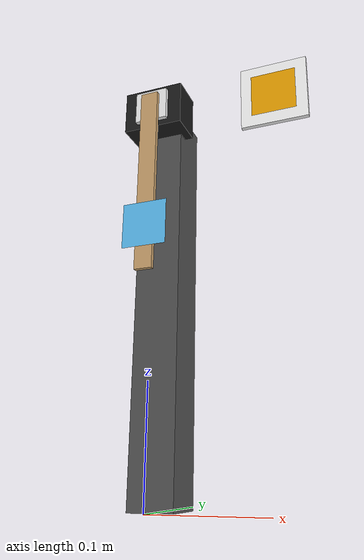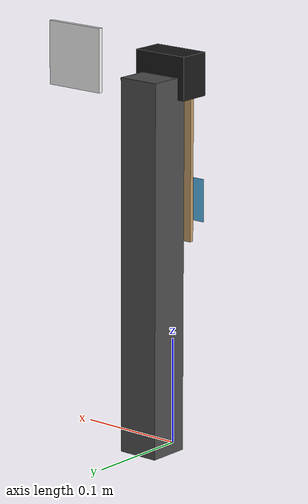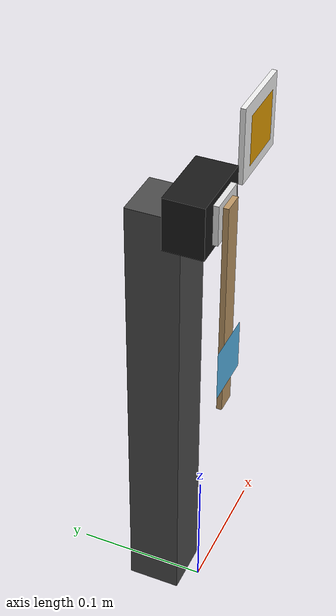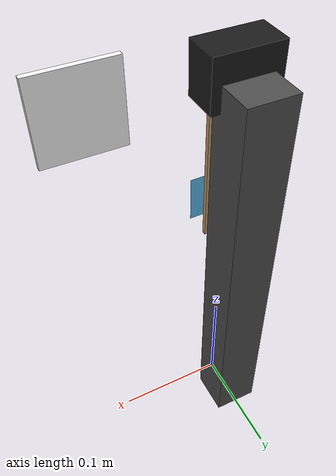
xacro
<?xml version="1.0"?>
<robot name="servo_arm" xmlns:xacro="http://www.ros.org/wiki/xacro">
  <xacro:arg name="mass" default="0.1223"/> <!-- kg   (nominal mgl 0.09 N m with com 0.075 m) -->
  <xacro:arg name="i_cm" default="1.5e-4"/> <!-- kg m^2 about the centre of mass, joint axis -->
  <xacro:arg name="damping" default="0.0"/> <!-- N m s / rad -->
  <xacro:arg name="friction" default="0.0"/> <!-- N m, Coulomb -->
  <xacro:arg name="color" default="0.75 0.6 0.4 1"/>
  <xacro:arg name="sim" default="false"/>
  <xacro:arg name="servo_mode" default="python"/>  <!-- python: torque from servo_driver; builtin: Gazebo PID -->
  <xacro:arg name="kp" default="1.0"/>
  <xacro:arg name="kd" default="0.05"/>
  <xacro:arg name="tau_max" default="1.0"/>

  <xacro:include filename="servo_arm.macro.xacro"/>

  <xacro:servo_arm mass="$(arg mass)" i_cm="$(arg i_cm)" damping="$(arg damping)" friction="$(arg friction)" color="$(arg color)"/>

  <xacro:if value="$(arg sim)">
    <link name="world"/>
    <joint name="world_to_base" type="fixed">
      <parent link="world"/><child link="base_link"/>
    </joint>
    <xacro:include filename="servo_arm.gazebo.xacro"/>
    <xacro:servo_arm_gazebo servo_mode="$(arg servo_mode)" kp="$(arg kp)" kd="$(arg kd)" tau_max="$(arg tau_max)"/>
  </xacro:if>
</robot>

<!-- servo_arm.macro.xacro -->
<robot xmlns:xacro="http://www.ros.org/wiki/xacro">
  <!-- rig geometry [m]; must match the real build and nekf_rig_sim/plant.py (COM) -->
  <xacro:property name="pivot_z" value="0.35"/>
  <xacro:property name="arm_len" value="0.17"/>
  <xacro:property name="com" value="0.075"/>      <!-- pivot to centre of mass -->
  <xacro:property name="tag_r" value="0.12"/>     <!-- pivot to arm-tag centre -->
  <xacro:property name="tag_size" value="0.04"/>  <!-- printed tag incl. white margin -->
  <xacro:property name="mesh_dir" value="package://ml_ekf/textures"/>

  <xacro:macro name="box_visual" params="xyz size rgba">
    <visual>
      <origin xyz="${xyz}"/>
      <geometry><box size="${size}"/></geometry>
      <material name="${rgba}">
        <color rgba="${rgba}"/>
      </material>
    </visual>
  </xacro:macro>

  <xacro:macro name="tag_visual" params="tag_id xyz">
    <visual>
      <origin xyz="${xyz}"/>
      <geometry>
        <mesh filename="${mesh_dir}/aruco_tag_${tag_id}.dae" scale="${tag_size} 1 ${tag_size}"/>
      </geometry>
    </visual>
  </xacro:macro>

  <xacro:macro name="servo_arm" params="mass i_cm damping friction color">
    <link name="base_link">
      <xacro:box_visual xyz="0 0.03 ${pivot_z / 2}" size="0.04 0.04 ${pivot_z}" rgba="0.3 0.3 0.3 1"/>
      <xacro:box_visual xyz="0 0.005 ${pivot_z}" size="0.055 0.03 0.04" rgba="0.1 0.1 0.1 1"/>
      <xacro:box_visual xyz="0.11 0.008 ${pivot_z}" size="0.06 0.004 0.06" rgba="0.95 0.95 0.95 1"/>
      <xacro:tag_visual tag_id="1" xyz="0.11 0.005 ${pivot_z}"/>
      <inertial>
        <mass value="1.0"/>
        <inertia ixx="0.01" ixy="0" ixz="0" iyy="0.01" iyz="0" izz="0.01"/>
      </inertial>
    </link>

    <!-- moving arm: horn, bar and the arm tag (id 0); the inertia gives exactly the drawn J and mgl -->
    <link name="arm_link">
      <xacro:box_visual xyz="0 -0.012 0" size="0.03 0.004 0.03" rgba="0.9 0.9 0.9 1"/>
      <xacro:box_visual xyz="0 -0.016 ${-arm_len / 2 + 0.01}" size="0.016 0.004 ${arm_len}" rgba="${color}"/>
      <xacro:tag_visual tag_id="0" xyz="0 -0.0185 ${-tag_r}"/>
      <inertial>
        <origin xyz="0 0 ${-com}"/>
        <mass value="${mass}"/>
        <!-- a thin bar along z: i_cm about the joint axis (y), x close to it, z small -->
        <inertia ixx="${0.95 * i_cm}" ixy="0" ixz="0" iyy="${i_cm}" iyz="0" izz="${0.1 * i_cm}"/>
      </inertial>
    </link>

    <joint name="servo_joint" type="revolute">
      <parent link="base_link"/>
      <child link="arm_link"/>
      <origin xyz="0 0 ${pivot_z}"/>
      <axis xyz="0 1 0"/>
      <limit lower="-0.3" upper="3.45" effort="100" velocity="100"/>
      <dynamics damping="${damping}" friction="${friction}"/>
    </joint>
  </xacro:macro>
</robot>
